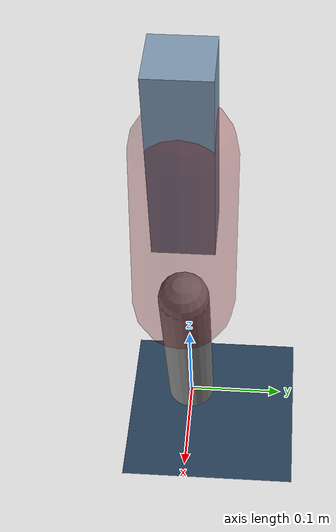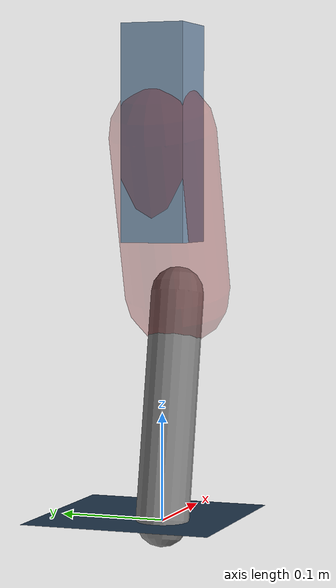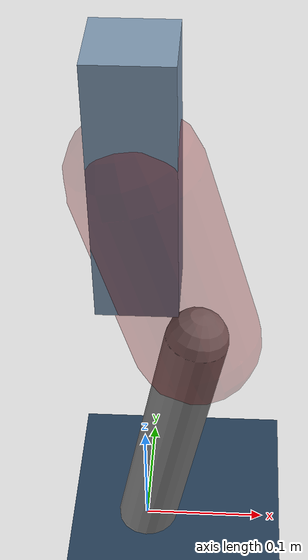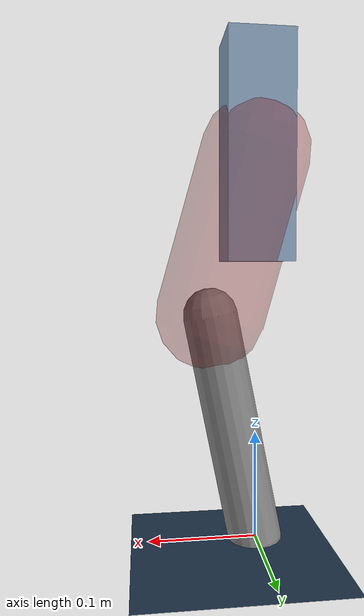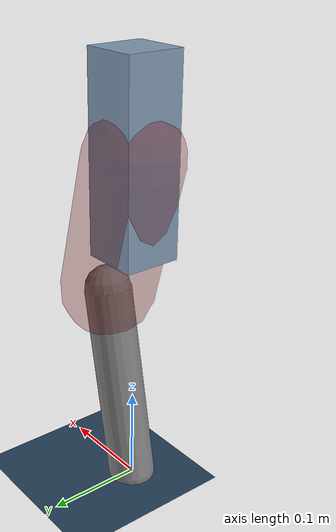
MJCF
<mujoco model="Hopper2D">
	<compiler inertiafromgeom="true" angle="radian" />
	<option timestep="0.001" integrator="implicit" cone="elliptic" solver="Newton" tolerance="1e-10" />

	<default>
		<geom contype="1" conaffinity="1" condim="3" friction="2 0.005 0.0001" solref="0.005 1" />
		<joint limited="true" damping="0.1" />
	</default>

	<asset>
		<texture name="skybox" type="skybox" builtin="gradient" rgb1=".4 .6 .8" rgb2="0 0 0" width="800" height="800" />
		<texture name="grid" type="2d" builtin="checker" rgb1=".1 .2 .3" rgb2=".2 .3 .4" width="300" height="300" mark="edge" markrgb=".2 .3 .4" />
		<material name="ground" texture="grid" texrepeat="1 1" texuniform="true" reflectance="0.1" />
		<material name="leg" rgba="0.5 0.6 0.7 1" />
	</asset>

	<worldbody>

		<geom name="floor" type="plane" size="5 5 0.25" material="ground" />

		<light directional="false" diffuse="0.8 0.8 0.8" specular="0.3 0.3 0.3" pos="0 0 2" dir="0 0 -1" />
		<light mode="targetbodycom" target="base" directional="false" diffuse="0.8 0.8 0.8" specular="0.3 0.3 0.3" pos="0 0 2" dir="0 0 -1" />

		<camera name="fixed" pos="0 -2 1" xyaxes="1 0 0 0 0 1" />
		<camera name="tracking" mode="trackcom" pos="0 -3 1" />

		<body name="root" pos="0 0 0.3594348354694208">
			<joint name="slide_x" type="slide" axis="1 0 0" range="-100 100" />
			<joint name="slide_z" type="slide" axis="0 0 1" range="0 10" />

			<body name="base" pos="0 0 0">
				<geom name="torso" type="box" size="0.03 0.03 0.1" mass="2.0090000000000003" material="leg" />

				<body name="link1" pos="0 0 0" euler="0 1.2958478025141646 0">
					<joint type="hinge" axis="0 -1 0" pos="0 0 0" name="hinge1" limited="true" range="-3.14 3.14" stiffness="0" damping="0.1" />
					<geom name="thigh" type="capsule" fromto="0 0 0 0.15507423766938522 0 0" size="0.05" rgba="0.5 0 0 0.3" mass="0.620570746639586" />

					<body name="link2" pos="0.15507423766938522 0 0" euler="0 0.472642286371835 0">
						<joint type="hinge" axis="0 -1 0" pos="0 0 0" name="hinge2" limited="true" range="-3.14 3.14" stiffness="0" damping="0.1" />
						<geom name="shank" type="capsule" fromto="0 0 0 0.21436059780003558 0 0" size="0.025" mass="0.4129884782400285" />

					</body>
				</body>
			</body>
		</body>
	</worldbody>

	<actuator>
		<motor name="torque1" joint="hinge1" ctrlrange="-80.60323069755886 80.60323069755886" ctrllimited="true" gear="1" />
		<motor name="torque2" joint="hinge2" ctrlrange="-12.965527456983173 12.965527456983173" ctrllimited="true" gear="1" />
	</actuator>
</mujoco>
